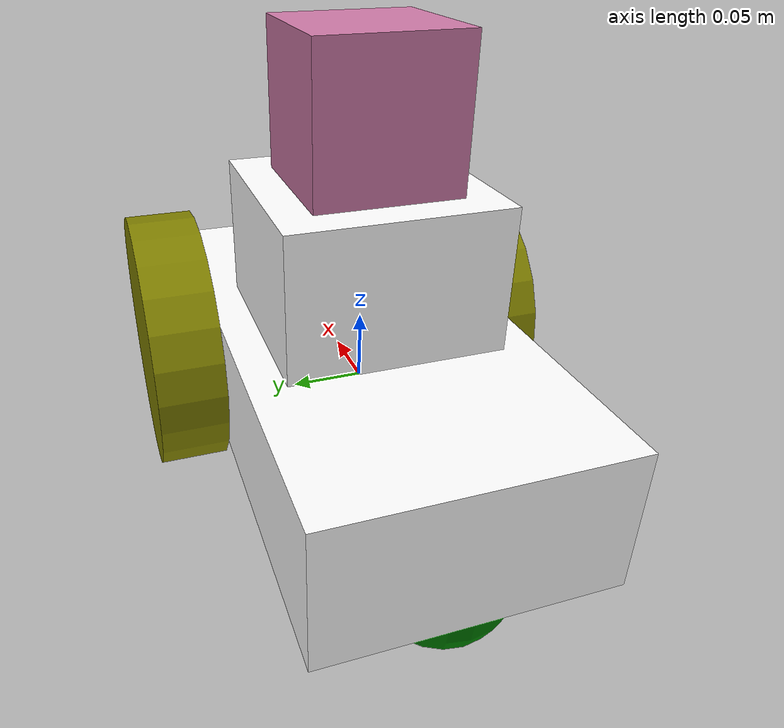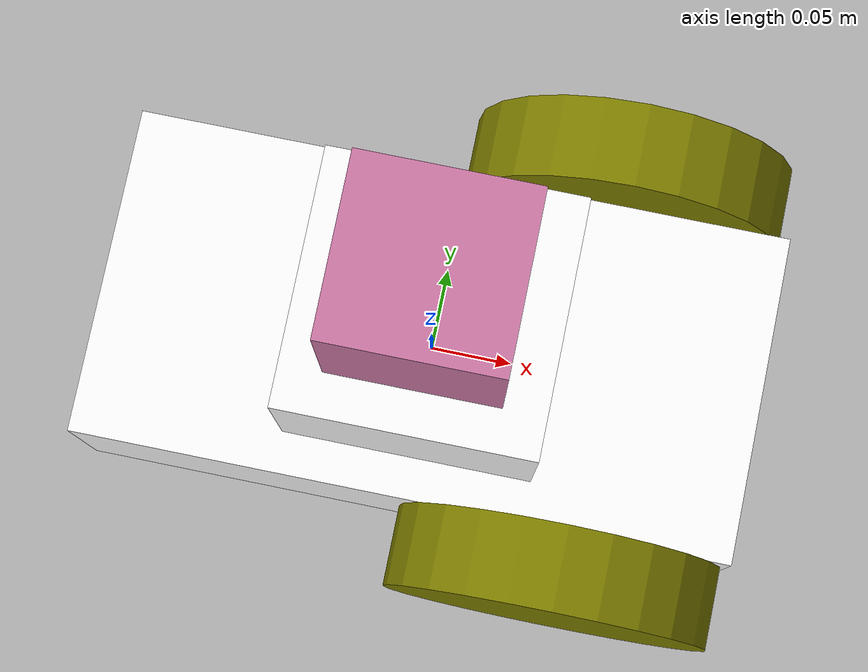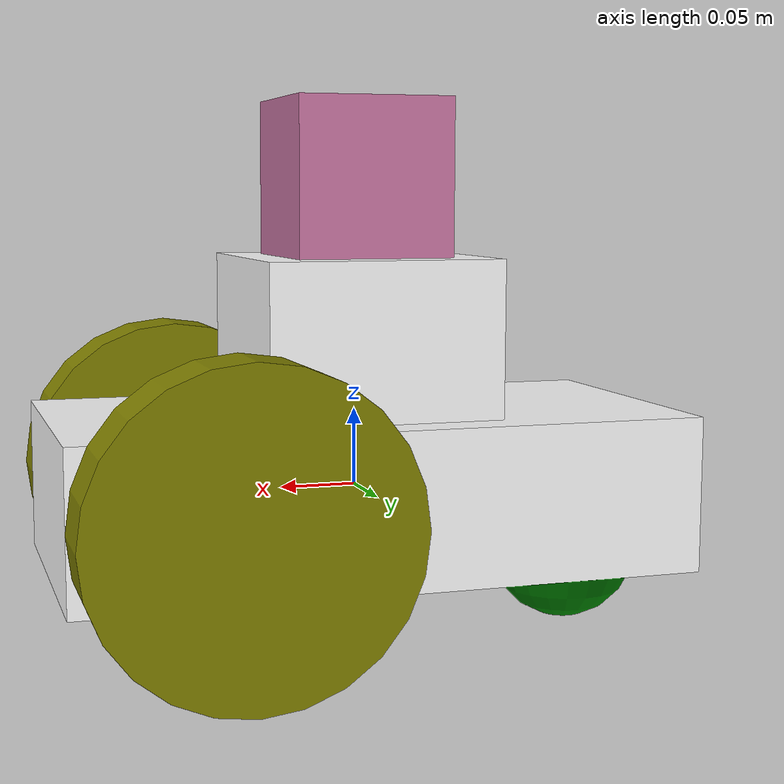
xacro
<?xml version="1.0"?>
<robot name="robot"
  xmlns:xacro="http://ros.org/wiki/xacro">
  <xacro:include filename="$(find lidar_robot_model)/urdf/body/body.urdf.xacro"/>
  <xacro:include filename="$(find lidar_robot_model)/urdf/wheel/wheel.urdf.xacro"/>
  <xacro:include filename="$(find lidar_robot_model)/urdf/caster/caster.urdf.xacro"/>
  <xacro:include filename="$(find lidar_robot_model)/urdf/lidar_base/lidar_base.urdf.xacro"/>
  <xacro:include filename="$(find lidar_robot_model)/urdf/sensors/lrf.urdf.xacro"/>
  <link name="base_footprint"/>

  <xacro:base parent="base_footprint">
    <origin xyz="0 0 0"/>
  </xacro:base>

  <xacro:wheel prefix="right" parent="base_link">
    <origin xyz="0.1 -0.125 0.0" rpy="1.57 0 0" />
    <axis xyz="0 0 -1" />
  </xacro:wheel>

  <xacro:wheel prefix="left" parent="base_link">
    <origin xyz="0.1 0.125 0.0" rpy="-1.57 0 0" />
    <axis xyz="0 0 1" />
  </xacro:wheel>

  <xacro:caster parent="base_link">
    <origin xyz="-0.15 0 -0.05"/>
  </xacro:caster>

  <xacro:lidar_base parent="base_link">
    <origin xyz="0 0 0.10"/>
  </xacro:lidar_base>

  <xacro:lrf_sensor prefix="top" parent="base_link">
    <origin xyz="0 0 0.2" rpy="0 0 0" />
  </xacro:lrf_sensor>

  <!-- ===========  Transmission ============ -->
  <xacro:wheel_trans prefix="right" interface="hardware_interface/VelocityJointInterface" />
  <xacro:wheel_trans prefix="left" interface="hardware_interface/VelocityJointInterface" />

  <!-- =============== Gazebo =============== -->
  <gazebo>
    <plugin name="gazebo_ros_control" filename="libgazebo_ros_control.so">
      <robotNamespace>/robot</robotNamespace>
    </plugin>
  </gazebo>

  <xacro:base_gazebo/>
  <xacro:wheel_gazebo prefix="right" />
  <xacro:wheel_gazebo prefix="left" />
  <xacro:caster_gazebo/>
  <xacro:lrf_gazebo prefix="top" rad_range="${radians(360)}" min_range="0.1" max_range="25.0"/>
</robot>

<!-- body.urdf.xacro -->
<robot xmlns:xacro="http://ros.org/wiki/xacro">
  <xacro:include filename="$(find lidar_robot_model)/urdf/body/body.gazebo.xacro" />
  <xacro:macro name="base" params="parent *joint_origin">
    <joint name="base_joint" type="fixed">
      <xacro:insert_block name="joint_origin"/>
      <parent link="${parent}"/>
      <child link="base_link"/>
    </joint>

    <link name="base_link">
      <visual>
        <geometry>
          <box size="0.400 0.200 0.100"/>
        </geometry>
        <material name="gray">
          <color rgba="1 1 1 1"/>
        </material>
      </visual>

      <collision>
        <geometry>
          <box size="0.400 0.200 0.100"/>
        </geometry>
      </collision>

      <inertial>
        <origin xyz="0 0 0"/>
        <mass value="0.6"/>
        <inertia ixx="1e-3" ixy="0" ixz="0" iyy="1e-3" iyz="0" izz="1e-3"/>
      </inertial>
    </link>
  </xacro:macro>
</robot>

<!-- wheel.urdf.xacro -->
<robot xmlns:xacro="http://ros.org/wiki/xacro">
  <xacro:include filename="$(find lidar_robot_model)/urdf/wheel/wheel.gazebo.xacro" />
  <xacro:include filename="$(find lidar_robot_model)/urdf/wheel/wheel.transmission.xacro" />
  <xacro:macro name="wheel" params="prefix parent *joint_origin *joint_axis">
    <joint name="${prefix}_wheel_joint" type="continuous">
      <xacro:insert_block name="joint_origin" />
      <xacro:insert_block name="joint_axis" />
      <parent link="${parent}" />
      <child link="${prefix}_wheel" />
    </joint>

    <link name="${prefix}_wheel">
      <visual>
        <geometry>
          <cylinder radius="0.1" length="0.05"/>
        </geometry>
        <material name="olive">
          <color rgba="128 128 0 1"/>
        </material>
      </visual>

      <collision>
        <geometry>
          <cylinder radius="0.1" length="0.05"/>
        </geometry>
      </collision>

      <inertial>
        <origin xyz="0.0 0.0 0.0" />
        <mass value="0.500"/>
        <inertia ixx="0.0013541667" ixy="0" ixz="0" iyy="0.0013541667" iyz="0" izz="0.0025"/>
      </inertial>
    </link>
  </xacro:macro>
</robot>

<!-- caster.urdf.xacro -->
<robot xmlns:xacro="http://ros.org/wiki/xacro">
  <xacro:include filename="$(find lidar_robot_model)/urdf/caster/caster.gazebo.xacro" />
  <xacro:macro name="caster" params="parent *joint_origin">
    <joint name="$caster_joint" type="fixed">
      <xacro:insert_block name="joint_origin" />
      <parent link="${parent}" />
      <child link="caster_link" />
    </joint>

    <link name="caster_link">
      <visual>
        <geometry>
          <sphere radius="0.05"/>
        </geometry>
        <material name="green">
          <color rgba="0 128 0 1"/>
        </material>
      </visual>

      <collision>
        <geometry>
          <sphere radius="0.05"/>
        </geometry>
      </collision>

      <inertial>
        <origin xyz="0.0 0 0.0" />
        <mass value="0.50" />
        <inertia ixx="0.0025" ixy="0.0" iyy="0.0025" ixz="0.0" iyz="0.0" izz="0.0025" />
      </inertial>
    </link>
  </xacro:macro>
</robot>

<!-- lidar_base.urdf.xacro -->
<robot xmlns:xacro="http://ros.org/wiki/xacro">
  <xacro:include filename="$(find lidar_robot_model)/urdf/lidar_base/lidar_base.gazebo.xacro" />
  <xacro:macro name="lidar_base" params="parent *joint_origin">
    <joint name="lidar_base_joint" type="fixed">
      <xacro:insert_block name="joint_origin"/>
      <parent link="${parent}"/>
      <child link="lidar_base_link"/>
    </joint>

    <link name="lidar_base_link">
      <visual>
        <geometry>
          <box size="0.150 0.150 0.100"/>
        </geometry>
        <material name="gray">
          <color rgba="1 1 1 1"/>
        </material>
      </visual>

      <collision>
        <geometry>
          <box size="0.150 0.150 0.100"/>
        </geometry>
      </collision>

      <inertial>
        <origin xyz="0 0 0"/>
        <mass value="0.6"/>
        <inertia ixx="1e-3" ixy="0" ixz="0" iyy="1e-3" iyz="0" izz="1e-3"/>
      </inertial>
    </link>
  </xacro:macro>
</robot>

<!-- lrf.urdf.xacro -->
<robot xmlns:xacro="http://ros.org/wiki/xacro">
  <xacro:include filename="$(find lidar_robot_model)/urdf/sensors/lrf.gazebo.xacro" />
  <xacro:macro name="lrf_sensor" params="prefix parent *joint_origin">
    <joint name="${prefix}_lrf_joint" type="fixed">
      <xacro:insert_block name="joint_origin" />
      <parent link="${parent}" />
      <child link="${prefix}_lrf_link" />
    </joint>

    <link name="${prefix}_lrf_link">
      <visual>
        <geometry>
          <box size="0.1 0.1 0.1"/>
        </geometry>
      </visual>

      <collision>
      <origin xyz="0 0 0" rpy="0 0 0"/>
        <geometry>
          <box size="0.1 0.1 0.1"/>
        </geometry>
      </collision>

      <inertial>
        <mass value="1e-5" />
        <origin xyz="0 0 0" rpy="0 0 0"/>
        <inertia ixx="1e-6" ixy="0" ixz="0" iyy="1e-6" iyz="0" izz="1e-6" />
      </inertial>
    </link>
  </xacro:macro>
</robot>
